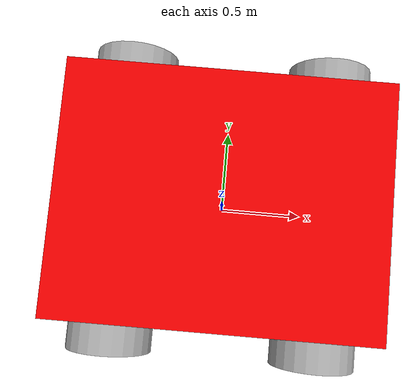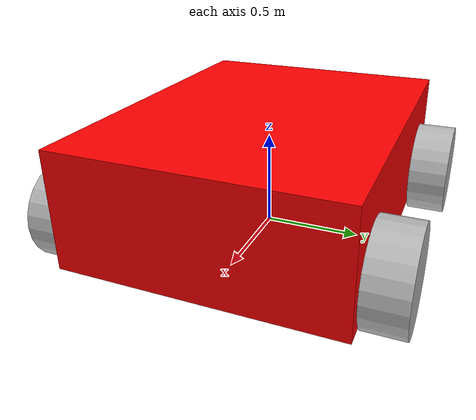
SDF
<?xml version="1.0" ?>
<sdf version="1.10">
    <!-- TONK -->
    <model name="tonk" canonical_link="base">
      <!-- Spawn height so wheels touch ground -->
      <pose>0 0 0.35 0 0 0</pose>

      <plugin filename="gz-sim-diff-drive-system"
              name="gz::sim::systems::DiffDrive">
        <left_joint>left_front_joint</left_joint>
        <left_joint>left_rear_joint</left_joint>

        <right_joint>right_front_joint</right_joint>
        <right_joint>right_rear_joint</right_joint>

        <wheel_separation>1.6</wheel_separation>
        <wheel_radius>0.25</wheel_radius>
        <topic>/cmd_vel</topic>
      </plugin>

      <!-- Base Link -->
      <link name="base">
        <inertial>
          <mass>40</mass>
          <inertia><ixx>2</ixx><iyy>2</iyy><izz>2</izz></inertia>
        </inertial>
        <visual name="visual">
          <geometry><box><size>1.8 1.4 0.6</size></box></geometry>
          <material>
            <ambient>1 0 0 1</ambient>
            <diffuse>1 0 0 1</diffuse>
          </material>
        </visual>
        <collision name="collision">
          <geometry><box><size>1.8 1.4 0.6</size></box></geometry>
        </collision>
      </link>

      <!-- Wheels -->
      <!-- Left Front -->
      <link name="left_front">
        <pose>0.6 0.8 -0.15 -1.57 0 0</pose>
        <inertial><mass>2</mass></inertial>
        <visual name="visual"><geometry><cylinder><radius>0.25</radius><length>0.2</length></cylinder></geometry></visual>
        <collision name="collision"><geometry><cylinder><radius>0.25</radius><length>0.2</length></cylinder></geometry></collision>
      </link>

      <!-- Right Front -->
      <link name="right_front">
        <pose>0.6 -0.8 -0.15 -1.57 0 0</pose>
        <inertial><mass>2</mass></inertial>
        <visual name="visual"><geometry><cylinder><radius>0.25</radius><length>0.2</length></cylinder></geometry></visual>
        <collision name="collision"><geometry><cylinder><radius>0.25</radius><length>0.2</length></cylinder></geometry></collision>
      </link>

      <!-- Left Rear -->
      <link name="left_rear">
        <pose>-0.6 0.8 -0.15 -1.57 0 0</pose>
        <inertial><mass>2</mass></inertial>
        <visual name="visual"><geometry><cylinder><radius>0.25</radius><length>0.2</length></cylinder></geometry></visual>
        <collision name="collision"><geometry><cylinder><radius>0.25</radius><length>0.2</length></cylinder></geometry></collision>
      </link>

      <!-- Right Rear -->
      <link name="right_rear">
        <pose>-0.6 -0.8 -0.15 -1.57 0 0</pose>
        <inertial><mass>2</mass></inertial>
        <visual name="visual"><geometry><cylinder><radius>0.25</radius><length>0.2</length></cylinder></geometry></visual>
        <collision name="collision"><geometry><cylinder><radius>0.25</radius><length>0.2</length></cylinder></geometry></collision>
      </link>

      <!-- Features -->
      <link name="lidar">
        <pose>0 0 0.5 0 0 0</pose>

        <sensor name="lidar_sensor" type="gpu_lidar">
          <pose>0 0 0 0 0 0</pose>
          <always_on>true</always_on>
          <update_rate>10</update_rate>
          <visualize>true</visualize>
          <topic>/lidar</topic>

          <lidar>
            <scan>
              <horizontal>
                <samples>360</samples>
                <resolution>1</resolution>
                <min_angle>-3.14159</min_angle>
                <max_angle>3.14159</max_angle>
              </horizontal>
            </scan>
            <range>
              <min>0.1</min>
              <max>10.0</max>
              <resolution>0.01</resolution>
            </range>
          </lidar>
        </sensor>
      </link>

      <!-- Feature Thermal Camera -->
      <link name="thermal_camera">
    <pose>0.05 0.05 0.05 0 0 0</pose>
    <collision name="collision">
      <geometry>
        <box>
          <size>0.1 0.1 0.1</size>
        </box>
      </geometry>
    </collision>
    <visual name="visual">
      <geometry>
        <box>
          <size>0.1 0.1 0.1</size>
        </box>
      </geometry>
    </visual>
    <sensor name="thermal_camera_8bit" type="thermal">
      <camera>
        <horizontal_fov>1.047</horizontal_fov>
        <image>
          <width>320</width>
          <height>240</height>
          <format>L8</format>
        </image>
        <clip>
          <near>0.1</near>
          <far>100</far>
        </clip>
      </camera>
      <always_on>1</always_on>
      <update_rate>30</update_rate>
      <visualize>true</visualize>
      <topic>thermal_camera_8bit/image</topic>
      <plugin
        filename="ignition-gazebo-thermal-sensor-system"
        name="gz::sim::systems::ThermalSensor">
        <min_temp>253.15</min_temp>
        <max_temp>673.15</max_temp>
        <resolution>3.0</resolution>
      </plugin>
    </sensor>
  </link>

      <!-- Thermal camera joint -->
      <joint name="thermal_joint" type="fixed">
        <parent>base</parent>
        <child>thermal_camera</child>
      </joint>

      <!-- Joints -->
      <joint name="left_front_joint" type="revolute">
        <parent>base</parent><child>left_front</child>
        <axis><xyz>0 0 1</xyz></axis>
      </joint>
      <joint name="right_front_joint" type="revolute">
        <parent>base</parent><child>right_front</child>
        <axis><xyz>0 0 1</xyz></axis>
      </joint>
      <joint name="left_rear_joint" type="revolute">
        <parent>base</parent><child>left_rear</child>
        <axis><xyz>0 0 1</xyz></axis>
      </joint>
      <joint name="right_rear_joint" type="revolute">
        <parent>base</parent><child>right_rear</child>
        <axis><xyz>0 0 1</xyz></axis>
      </joint>
      <joint name="lidar_joint" type="fixed">
        <parent>base</parent>
        <child>lidar</child>
      </joint>
    </model>
</sdf>
